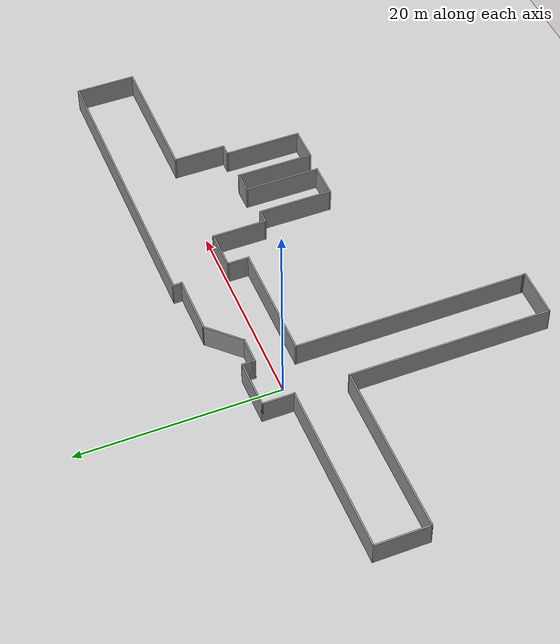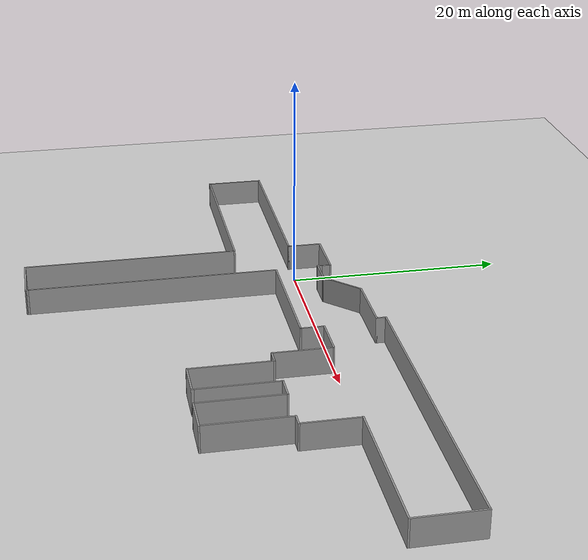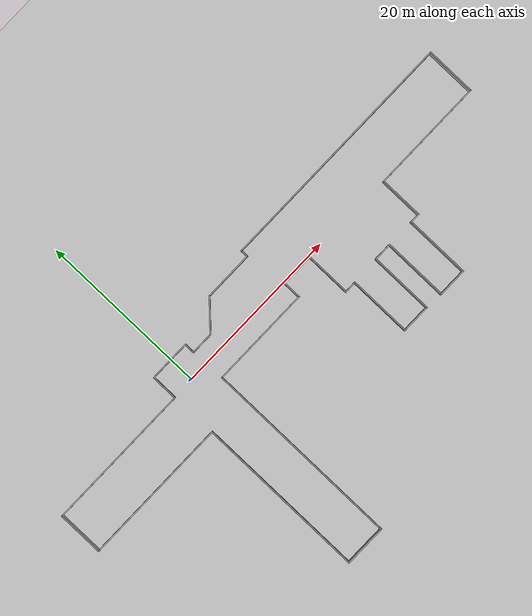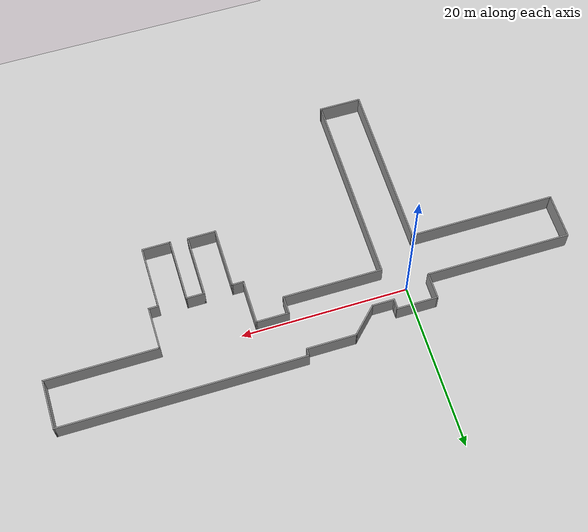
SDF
<sdf version="1.6">
 <world name="default">
  <light name="sun" type="directional">
   <pose>0 0 10 0 -0 0</pose>
   <diffuse>0.8 0.8 0.8 1</diffuse>
   <specular>0.1 0.1 0.1 1</specular>
   <attenuation>
    <range>1000</range>
    <constant>0.9</constant>
    <linear>0.01</linear>
    <quadratic>0.001</quadratic>
   </attenuation>
   <direction>-0.5 0.5 -1</direction>
  </light>
  <model name="ground_plane">
   <static>1</static>
   <link name="link">
    <collision name="collision">
     <geometry><plane><normal>0 0 1</normal><size>100 100</size></plane></geometry>
     <surface><friction><ode><mu>100</mu><mu2>50</mu2></ode></friction></surface>
    </collision>
    <visual name="visual">
     <cast_shadows>0</cast_shadows>
     <geometry><plane><normal>0 0 1</normal><size>100 100</size></plane></geometry>
     <material>
      <script><uri>file://media/materials/scripts/gazebo.material</uri><name>Gazebo/Grey</name></script>
     </material>
    </visual>
   </link>
  </model>
  <gravity>0 0 -9.8</gravity>
  <magnetic_field>6e-06 2.3e-05 -4.2e-05</magnetic_field>
  <atmosphere type="adiabatic"/>
  <physics name="default_physics" default="0" type="ode">
   <max_step_size>0.001</max_step_size>
   <real_time_factor>1</real_time_factor>
   <real_time_update_rate>1000</real_time_update_rate>
  </physics>
  <scene><ambient>0.4 0.4 0.4 1</ambient><background>0.7 0.7 0.7 1</background><shadows>1</shadows></scene>
  <spherical_coordinates>
   <surface_model>EARTH_WGS84</surface_model>
   <latitude_deg>0</latitude_deg>
   <longitude_deg>0</longitude_deg>
   <elevation>0</elevation>
   <heading_deg>0</heading_deg>
  </spherical_coordinates>
  <model name="HospitalGiga">
   <pose>11.3976 -9.99963 0 0 -0 0</pose>
   <link name="Wall_0">
    <collision name="Wall_0_Collision">
     <geometry><box><size>20.25 0.15 2.5</size></box></geometry>
     <pose>0 0 1.25 0 -0 0</pose>
    </collision>
    <visual name="Wall_0_Visual">
     <pose>0 0 1.25 0 -0 0</pose>
     <geometry><box><size>20.25 0.15 2.5</size></box></geometry>
     <material>
      <script><uri>file://media/materials/scripts/gazebo.material</uri><name>Gazebo/Grey</name></script>
      <ambient>1 1 1 1</ambient>
     </material>
    </visual>
    <pose>-13.8695 -5.50235 0 0 -0 1.5708</pose>
   </link>
   <link name="Wall_1">
    <collision name="Wall_1_Collision">
     <geometry><box><size>17.5 0.15 2.5</size></box></geometry>
     <pose>0 0 1.25 0 -0 0</pose>
    </collision>
    <visual name="Wall_1_Visual">
     <pose>0 0 1.25 0 -0 0</pose>
     <geometry><box><size>17.5 0.15 2.5</size></box></geometry>
     <material>
      <script><uri>file://media/materials/scripts/gazebo.material</uri><name>Gazebo/Grey</name></script>
      <ambient>1 1 1 1</ambient>
     </material>
    </visual>
    <pose>-22.5445 4.54765 0 0 -0 3.14159</pose>
   </link>
   <link name="Wall_10">
    <collision name="Wall_10_Collision">
     <geometry><box><size>4.25 0.15 2.5</size></box></geometry>
     <pose>0 0 1.25 0 -0 0</pose>
    </collision>
    <visual name="Wall_10_Visual">
     <pose>0 0 1.25 0 -0 0</pose>
     <geometry><box><size>4.25 0.15 2.5</size></box></geometry>
     <material>
      <script><uri>file://media/materials/scripts/gazebo.material</uri><name>Gazebo/Grey</name></script>
      <ambient>1 1 1 1</ambient>
     </material>
    </visual>
    <pose>-5.06657 13.2731 0 0 -0 0.785398</pose>
   </link>
   <link name="Wall_11">
    <collision name="Wall_11_Collision">
     <geometry><box><size>6 0.15 2.5</size></box></geometry>
     <pose>0 0 1.25 0 -0 0</pose>
    </collision>
    <visual name="Wall_11_Visual">
     <pose>0 0 1.25 0 -0 0</pose>
     <geometry><box><size>6 0.15 2.5</size></box></geometry>
     <material>
      <script><uri>file://media/materials/scripts/gazebo.material</uri><name>Gazebo/Grey</name></script>
      <ambient>1 1 1 1</ambient>
     </material>
    </visual>
    <pose>-0.692003 14.7227 0 0 -0 0</pose>
   </link>
   <link name="Wall_12">
    <collision name="Wall_12_Collision">
     <geometry><box><size>1 0.15 2.5</size></box></geometry>
     <pose>0 0 1.25 0 -0 0</pose>
    </collision>
    <visual name="Wall_12_Visual">
     <pose>0 0 1.25 0 -0 0</pose>
     <geometry><box><size>1 0.15 2.5</size></box></geometry>
     <material>
      <script><uri>file://media/materials/scripts/gazebo.material</uri><name>Gazebo/Grey</name></script>
      <ambient>1 1 1 1</ambient>
     </material>
    </visual>
    <pose>2.233 15.1477 0 0 -0 1.5708</pose>
   </link>
   <link name="Wall_13">
    <collision name="Wall_13_Collision">
     <geometry><box><size>29.25 0.15 2.5</size></box></geometry>
     <pose>0 0 1.25 0 -0 0</pose>
    </collision>
    <visual name="Wall_13_Visual">
     <pose>0 0 1.25 0 -0 0</pose>
     <geometry><box><size>29.25 0.15 2.5</size></box></geometry>
     <material>
      <script><uri>file://media/materials/scripts/gazebo.material</uri><name>Gazebo/Grey</name></script>
      <ambient>1 1 1 1</ambient>
     </material>
    </visual>
    <pose>16.783 15.5727 0 0 -0 0</pose>
   </link>
   <link name="Wall_14">
    <collision name="Wall_14_Collision">
     <geometry><box><size>6 0.15 2.5</size></box></geometry>
     <pose>0 0 1.25 0 -0 0</pose>
    </collision>
    <visual name="Wall_14_Visual">
     <pose>0 0 1.25 0 -0 0</pose>
     <geometry><box><size>6 0.15 2.5</size></box></geometry>
     <material>
      <script><uri>file://media/materials/scripts/gazebo.material</uri><name>Gazebo/Grey</name></script>
      <ambient>1 1 1 1</ambient>
     </material>
    </visual>
    <pose>31.333 12.6477 0 0 0 -1.5708</pose>
   </link>
   <link name="Wall_15">
    <collision name="Wall_15_Collision">
     <geometry><box><size>13.5 0.15 2.5</size></box></geometry>
     <pose>0 0 1.25 0 -0 0</pose>
    </collision>
    <visual name="Wall_15_Visual">
     <pose>0 0 1.25 0 -0 0</pose>
     <geometry><box><size>13.5 0.15 2.5</size></box></geometry>
     <material>
      <script><uri>file://media/materials/scripts/gazebo.material</uri><name>Gazebo/Grey</name></script>
      <ambient>1 1 1 1</ambient>
     </material>
    </visual>
    <pose>24.658 9.72267 0 0 -0 3.14159</pose>
   </link>
   <link name="Wall_16">
    <collision name="Wall_16_Collision">
     <geometry><box><size>5.25 0.15 2.5</size></box></geometry>
     <pose>0 0 1.25 0 -0 0</pose>
    </collision>
    <visual name="Wall_16_Visual">
     <pose>0 0 1.25 0 -0 0</pose>
     <geometry><box><size>5.25 0.15 2.5</size></box></geometry>
     <material>
      <script><uri>file://media/materials/scripts/gazebo.material</uri><name>Gazebo/Grey</name></script>
      <ambient>1 1 1 1</ambient>
     </material>
    </visual>
    <pose>17.983 7.17267 0 0 0 -1.5708</pose>
   </link>
   <link name="Wall_17">
    <collision name="Wall_17_Collision">
     <geometry><box><size>1.25 0.15 2.5</size></box></geometry>
     <pose>0 0 1.25 0 -0 0</pose>
    </collision>
    <visual name="Wall_17_Visual">
     <pose>0 0 1.25 0 -0 0</pose>
     <geometry><box><size>1.25 0.15 2.5</size></box></geometry>
     <material>
      <script><uri>file://media/materials/scripts/gazebo.material</uri><name>Gazebo/Grey</name></script>
      <ambient>1 1 1 1</ambient>
     </material>
    </visual>
    <pose>17.433 4.62267 0 0 -0 3.14159</pose>
   </link>
   <link name="Wall_18">
    <collision name="Wall_18_Collision">
     <geometry><box><size>7.75 0.15 2.5</size></box></geometry>
     <pose>0 0 1.25 0 -0 0</pose>
    </collision>
    <visual name="Wall_18_Visual">
     <pose>0 0 1.25 0 -0 0</pose>
     <geometry><box><size>7.75 0.15 2.5</size></box></geometry>
     <material>
      <script><uri>file://media/materials/scripts/gazebo.material</uri><name>Gazebo/Grey</name></script>
      <ambient>1 1 1 1</ambient>
     </material>
    </visual>
    <pose>16.883 0.822669 0 0 0 -1.5708</pose>
   </link>
   <link name="Wall_19">
    <collision name="Wall_19_Collision">
     <geometry><box><size>3.5 0.15 2.5</size></box></geometry>
     <pose>0 0 1.25 0 -0 0</pose>
    </collision>
    <visual name="Wall_19_Visual">
     <pose>0 0 1.25 0 -0 0</pose>
     <geometry><box><size>3.5 0.15 2.5</size></box></geometry>
     <material>
      <script><uri>file://media/materials/scripts/gazebo.material</uri><name>Gazebo/Grey</name></script>
      <ambient>1 1 1 1</ambient>
     </material>
    </visual>
    <pose>15.208 -2.97733 0 0 -0 3.14159</pose>
   </link>
   <link name="Wall_2">
    <collision name="Wall_2_Collision">
     <geometry><box><size>0.25 0.15 2.5</size></box></geometry>
     <pose>0 0 1.25 0 -0 0</pose>
    </collision>
    <visual name="Wall_2_Visual">
     <pose>0 0 1.25 0 -0 0</pose>
     <geometry><box><size>0.25 0.15 2.5</size></box></geometry>
     <material>
      <script><uri>file://media/materials/scripts/gazebo.material</uri><name>Gazebo/Grey</name></script>
      <ambient>1 1 1 1</ambient>
     </material>
    </visual>
    <pose>-31.2678 4.56059 0 0 -0 2.87979</pose>
   </link>
   <link name="Wall_20">
    <collision name="Wall_20_Collision">
     <geometry><box><size>7.75 0.15 2.5</size></box></geometry>
     <pose>0 0 1.25 0 -0 0</pose>
    </collision>
    <visual name="Wall_20_Visual">
     <pose>0 0 1.25 0 -0 0</pose>
     <geometry><box><size>7.75 0.15 2.5</size></box></geometry>
     <material>
      <script><uri>file://media/materials/scripts/gazebo.material</uri><name>Gazebo/Grey</name></script>
      <ambient>1 1 1 1</ambient>
     </material>
    </visual>
    <pose>13.533 0.822669 0 0 -0 1.5708</pose>
   </link>
   <link name="Wall_21">
    <collision name="Wall_21_Collision">
     <geometry><box><size>2.25 0.15 2.5</size></box></geometry>
     <pose>0 0 1.25 0 -0 0</pose>
    </collision>
    <visual name="Wall_21_Visual">
     <pose>0 0 1.25 0 -0 0</pose>
     <geometry><box><size>2.25 0.15 2.5</size></box></geometry>
     <material>
      <script><uri>file://media/materials/scripts/gazebo.material</uri><name>Gazebo/Grey</name></script>
      <ambient>1 1 1 1</ambient>
     </material>
    </visual>
    <pose>12.483 4.62267 0 0 -0 3.14159</pose>
   </link>
   <link name="Wall_22">
    <collision name="Wall_22_Collision">
     <geometry><box><size>7.5 0.15 2.5</size></box></geometry>
     <pose>0 0 1.25 0 -0 0</pose>
    </collision>
    <visual name="Wall_22_Visual">
     <pose>0 0 1.25 0 -0 0</pose>
     <geometry><box><size>7.5 0.15 2.5</size></box></geometry>
     <material>
      <script><uri>file://media/materials/scripts/gazebo.material</uri><name>Gazebo/Grey</name></script>
      <ambient>1 1 1 1</ambient>
     </material>
    </visual>
    <pose>11.433 0.947669 0 0 0 -1.5708</pose>
   </link>
   <link name="Wall_23">
    <collision name="Wall_23_Collision">
     <geometry><box><size>0.25 0.15 2.5</size></box></geometry>
     <pose>0 0 1.25 0 -0 0</pose>
    </collision>
    <visual name="Wall_23_Visual">
     <pose>0 0 1.25 0 -0 0</pose>
     <geometry><box><size>0.25 0.15 2.5</size></box></geometry>
     <material>
      <script><uri>file://media/materials/scripts/gazebo.material</uri><name>Gazebo/Grey</name></script>
      <ambient>1 1 1 1</ambient>
     </material>
    </visual>
    <pose>11.433 -2.77733 0 0 0 -1.5708</pose>
   </link>
   <link name="Wall_24">
    <collision name="Wall_24_Collision">
     <geometry><box><size>3.5 0.15 2.5</size></box></geometry>
     <pose>0 0 1.25 0 -0 0</pose>
    </collision>
    <visual name="Wall_24_Visual">
     <pose>0 0 1.25 0 -0 0</pose>
     <geometry><box><size>3.5 0.15 2.5</size></box></geometry>
     <material>
      <script><uri>file://media/materials/scripts/gazebo.material</uri><name>Gazebo/Grey</name></script>
      <ambient>1 1 1 1</ambient>
     </material>
    </visual>
    <pose>9.758 -2.82733 0 0 -0 3.14159</pose>
   </link>
   <link name="Wall_25">
    <collision name="Wall_25_Collision">
     <geometry><box><size>7.5 0.15 2.5</size></box></geometry>
     <pose>0 0 1.25 0 -0 0</pose>
    </collision>
    <visual name="Wall_25_Visual">
     <pose>0 0 1.25 0 -0 0</pose>
     <geometry><box><size>7.5 0.15 2.5</size></box></geometry>
     <material>
      <script><uri>file://media/materials/scripts/gazebo.material</uri><name>Gazebo/Grey</name></script>
      <ambient>1 1 1 1</ambient>
     </material>
    </visual>
    <pose>8.083 0.847669 0 0 -0 1.5708</pose>
   </link>
   <link name="Wall_26">
    <collision name="Wall_26_Collision">
     <geometry><box><size>1.5 0.15 2.5</size></box></geometry>
     <pose>0 0 1.25 0 -0 0</pose>
    </collision>
    <visual name="Wall_26_Visual">
     <pose>0 0 1.25 0 -0 0</pose>
     <geometry><box><size>1.5 0.15 2.5</size></box></geometry>
     <material>
      <script><uri>file://media/materials/scripts/gazebo.material</uri><name>Gazebo/Grey</name></script>
      <ambient>1 1 1 1</ambient>
     </material>
    </visual>
    <pose>7.408 4.52267 0 0 -0 3.14159</pose>
   </link>
   <link name="Wall_27">
    <collision name="Wall_27_Collision">
     <geometry><box><size>5.5 0.15 2.5</size></box></geometry>
     <pose>0 0 1.25 0 -0 0</pose>
    </collision>
    <visual name="Wall_27_Visual">
     <pose>0 0 1.25 0 -0 0</pose>
     <geometry><box><size>5.5 0.15 2.5</size></box></geometry>
     <material>
      <script><uri>file://media/materials/scripts/gazebo.material</uri><name>Gazebo/Grey</name></script>
      <ambient>1 1 1 1</ambient>
     </material>
    </visual>
    <pose>6.733 7.19767 0 0 -0 1.5708</pose>
   </link>
   <link name="Wall_28">
    <collision name="Wall_28_Collision">
     <geometry><box><size>4 0.15 2.5</size></box></geometry>
     <pose>0 0 1.25 0 -0 0</pose>
    </collision>
    <visual name="Wall_28_Visual">
     <pose>0 0 1.25 0 -0 0</pose>
     <geometry><box><size>4 0.15 2.5</size></box></geometry>
     <material>
      <script><uri>file://media/materials/scripts/gazebo.material</uri><name>Gazebo/Grey</name></script>
      <ambient>1 1 1 1</ambient>
     </material>
    </visual>
    <pose>4.808 9.87267 0 0 -0 3.14159</pose>
   </link>
   <link name="Wall_29">
    <collision name="Wall_29_Collision">
     <geometry><box><size>2.25 0.15 2.5</size></box></geometry>
     <pose>0 0 1.25 0 -0 0</pose>
    </collision>
    <visual name="Wall_29_Visual">
     <pose>0 0 1.25 0 -0 0</pose>
     <geometry><box><size>2.25 0.15 2.5</size></box></geometry>
     <material>
      <script><uri>file://media/materials/scripts/gazebo.material</uri><name>Gazebo/Grey</name></script>
      <ambient>1 1 1 1</ambient>
     </material>
    </visual>
    <pose>2.883 8.82267 0 0 0 -1.5708</pose>
   </link>
   <link name="Wall_3">
    <collision name="Wall_3_Collision">
     <geometry><box><size>5.5 0.15 2.5</size></box></geometry>
     <pose>0 0 1.25 0 -0 0</pose>
    </collision>
    <visual name="Wall_3_Visual">
     <pose>0 0 1.25 0 -0 0</pose>
     <geometry><box><size>5.5 0.15 2.5</size></box></geometry>
     <material>
      <script><uri>file://media/materials/scripts/gazebo.material</uri><name>Gazebo/Grey</name></script>
      <ambient>1 1 1 1</ambient>
     </material>
    </visual>
    <pose>-31.3161 7.24853 0 0 -0 1.5708</pose>
   </link>
   <link name="Wall_30">
    <collision name="Wall_30_Collision">
     <geometry><box><size>12 0.15 2.5</size></box></geometry>
     <pose>0 0 1.25 0 -0 0</pose>
    </collision>
    <visual name="Wall_30_Visual">
     <pose>0 0 1.25 0 -0 0</pose>
     <geometry><box><size>12 0.15 2.5</size></box></geometry>
     <material>
      <script><uri>file://media/materials/scripts/gazebo.material</uri><name>Gazebo/Grey</name></script>
      <ambient>1 1 1 1</ambient>
     </material>
    </visual>
    <pose>-3.042 7.77267 0 0 -0 3.14159</pose>
   </link>
   <link name="Wall_31">
    <collision name="Wall_31_Collision">
     <geometry><box><size>23.25 0.15 2.5</size></box></geometry>
     <pose>0 0 1.25 0 -0 0</pose>
    </collision>
    <visual name="Wall_31_Visual">
     <pose>0 0 1.25 0 -0 0</pose>
     <geometry><box><size>23.25 0.15 2.5</size></box></geometry>
     <material>
      <script><uri>file://media/materials/scripts/gazebo.material</uri><name>Gazebo/Grey</name></script>
      <ambient>1 1 1 1</ambient>
     </material>
    </visual>
    <pose>-8.967 -3.77733 0 0 0 -1.5708</pose>
   </link>
   <link name="Wall_33">
    <collision name="Wall_33_Collision">
     <geometry><box><size>5.06024 0.15 2.5</size></box></geometry>
     <pose>0 0 1.25 0 -0 0</pose>
    </collision>
    <visual name="Wall_33_Visual">
     <pose>0 0 1.25 0 -0 0</pose>
     <geometry><box><size>5.06024 0.15 2.5</size></box></geometry>
     <material>
      <script><uri>file://media/materials/scripts/gazebo.material</uri><name>Gazebo/Grey</name></script>
      <ambient>1 1 1 1</ambient>
     </material>
    </visual>
    <pose>-11.4144 -15.5613 0 0 -0 3.13793</pose>
   </link>
   <link name="Wall_35">
    <collision name="Wall_35_Collision">
     <geometry><box><size>0.393133 0.15 2.5</size></box></geometry>
     <pose>0 0 1.25 0 -0 0</pose>
    </collision>
    <visual name="Wall_35_Visual">
     <pose>0 0 1.25 0 -0 0</pose>
     <geometry><box><size>0.393133 0.15 2.5</size></box></geometry>
     <material>
      <script><uri>file://media/materials/scripts/gazebo.material</uri><name>Gazebo/Grey</name></script>
      <ambient>1 1 1 1</ambient>
     </material>
    </visual>
    <pose>-8.96317 -15.4488 0 0 -0 1.60231</pose>
   </link>
   <link name="Wall_4">
    <collision name="Wall_4_Collision">
     <geometry><box><size>17.5 0.15 2.5</size></box></geometry>
     <pose>0 0 1.25 0 -0 0</pose>
    </collision>
    <visual name="Wall_4_Visual">
     <pose>0 0 1.25 0 -0 0</pose>
     <geometry><box><size>17.5 0.15 2.5</size></box></geometry>
     <material>
      <script><uri>file://media/materials/scripts/gazebo.material</uri><name>Gazebo/Grey</name></script>
      <ambient>1 1 1 1</ambient>
     </material>
    </visual>
    <pose>-22.6411 9.92353 0 0 -0 0</pose>
   </link>
   <link name="Wall_5">
    <collision name="Wall_5_Collision">
     <geometry><box><size>3.25 0.15 2.5</size></box></geometry>
     <pose>0 0 1.25 0 -0 0</pose>
    </collision>
    <visual name="Wall_5_Visual">
     <pose>0 0 1.25 0 -0 0</pose>
     <geometry><box><size>3.25 0.15 2.5</size></box></geometry>
     <material>
      <script><uri>file://media/materials/scripts/gazebo.material</uri><name>Gazebo/Grey</name></script>
      <ambient>1 1 1 1</ambient>
     </material>
    </visual>
    <pose>-13.9661 11.4735 0 0 -0 1.5708</pose>
   </link>
   <link name="Wall_6">
    <collision name="Wall_6_Collision">
     <geometry><box><size>5 0.15 2.5</size></box></geometry>
     <pose>0 0 1.25 0 -0 0</pose>
    </collision>
    <visual name="Wall_6_Visual">
     <pose>0 0 1.25 0 -0 0</pose>
     <geometry><box><size>5 0.15 2.5</size></box></geometry>
     <material>
      <script><uri>file://media/materials/scripts/gazebo.material</uri><name>Gazebo/Grey</name></script>
      <ambient>1 1 1 1</ambient>
     </material>
    </visual>
    <pose>-11.5411 13.0235 0 0 -0 0</pose>
   </link>
   <link name="Wall_7">
    <collision name="Wall_7_Collision">
     <geometry><box><size>1 0.15 2.5</size></box></geometry>
     <pose>0 0 1.25 0 -0 0</pose>
    </collision>
    <visual name="Wall_7_Visual">
     <pose>0 0 1.25 0 -0 0</pose>
     <geometry><box><size>1 0.15 2.5</size></box></geometry>
     <material>
      <script><uri>file://media/materials/scripts/gazebo.material</uri><name>Gazebo/Grey</name></script>
      <ambient>1 1 1 1</ambient>
     </material>
    </visual>
    <pose>-9.11614 12.5985 0 0 0 -1.5708</pose>
   </link>
   <link name="Wall_8">
    <collision name="Wall_8_Collision">
     <geometry><box><size>0.5 0.15 2.5</size></box></geometry>
     <pose>0 0 1.25 0 -0 0</pose>
    </collision>
    <visual name="Wall_8_Visual">
     <pose>0 0 1.25 0 -0 0</pose>
     <geometry><box><size>0.5 0.15 2.5</size></box></geometry>
     <material>
      <script><uri>file://media/materials/scripts/gazebo.material</uri><name>Gazebo/Grey</name></script>
      <ambient>1 1 1 1</ambient>
     </material>
    </visual>
    <pose>-9.11614 11.9985 0 0 0 -1.5708</pose>
   </link>
   <link name="Wall_9">
    <collision name="Wall_9_Collision">
     <geometry><box><size>2.75 0.15 2.5</size></box></geometry>
     <pose>0 0 1.25 0 -0 0</pose>
    </collision>
    <visual name="Wall_9_Visual">
     <pose>0 0 1.25 0 -0 0</pose>
     <geometry><box><size>2.75 0.15 2.5</size></box></geometry>
     <material>
      <script><uri>file://media/materials/scripts/gazebo.material</uri><name>Gazebo/Grey</name></script>
      <ambient>1 1 1 1</ambient>
     </material>
    </visual>
    <pose>-7.81614 11.8235 0 0 -0 0</pose>
   </link>
   <static>1</static>
  </model>
 </world>
</sdf>
